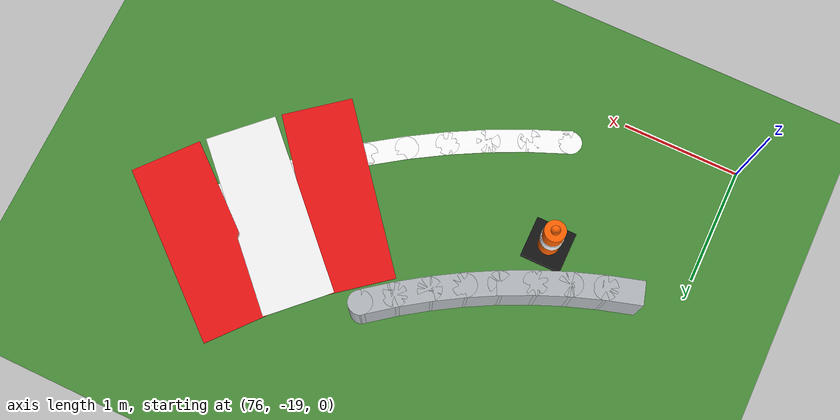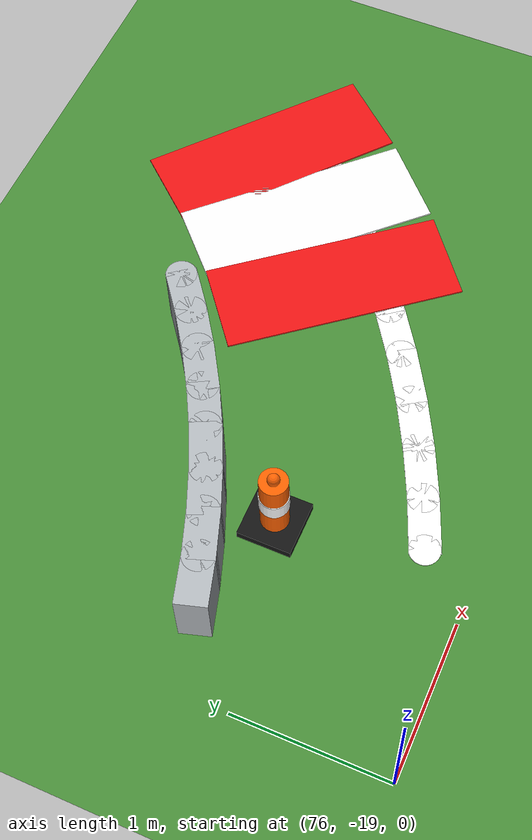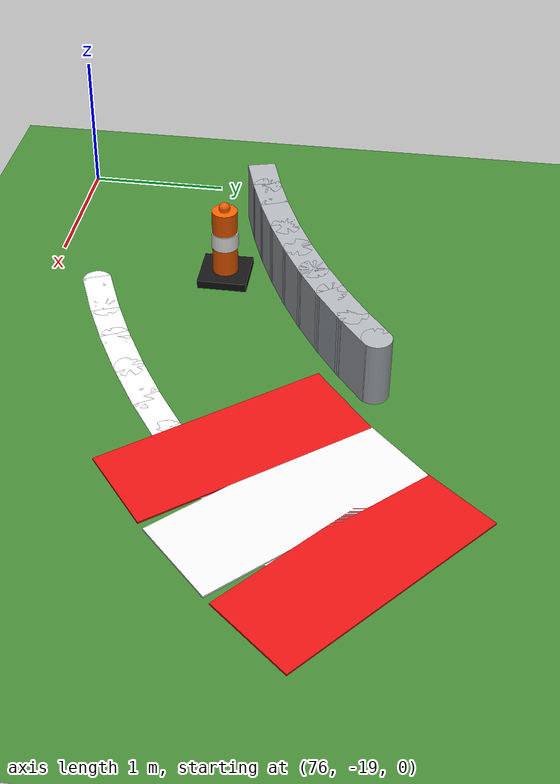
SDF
<sdf version="1.6">
 <world name="sem_silesia_ring_2026">
  <model name="ground_plane">
   <static>true</static>
   <link name="link">
    <collision name="collision">
     <geometry><plane><normal>0 0 1</normal><size>600 600</size></plane></geometry>
     <surface><friction><ode><mu>0.6</mu><mu2>0.6</mu2></ode></friction></surface>
    </collision>
    <visual name="visual">
     <geometry><plane><normal>0 0 1</normal><size>600 600</size></plane></geometry>
     <material><ambient>0.28 0.55 0.22 1</ambient><diffuse>0.28 0.55 0.22 1</diffuse></material>
    </visual>
   </link>
  </model>
  <model name="wl_Ri_jnt7">
   <static>true</static>
   <pose>77.3652 -18.6616 0.0050 0 0 0</pose>
   <link name="link">
    <visual name="v">
     <geometry><cylinder><radius>0.1000</radius><length>0.0040</length></cylinder></geometry>
     <material><ambient>1 1 1 1</ambient><diffuse>1 1 1 1</diffuse></material>
    </visual>
    <collision name="c">
     <geometry><cylinder><radius>0.1000</radius><length>0.0040</length></cylinder></geometry>
     <surface><friction><ode><mu>0.9</mu><mu2>0.9</mu2></ode></friction></surface>
    </collision>
   </link>
  </model>
  <model name="wl_Ri_s7">
   <static>true</static>
   <pose>77.5257 -18.5976 0.0050 0 0 0.3927</pose>
   <link name="link">
    <visual name="v">
     <geometry><box><size>0.4008 0.2000 0.0040</size></box></geometry>
     <material><ambient>1 1 1 1</ambient><diffuse>1 1 1 1</diffuse></material>
    </visual>
    <collision name="c">
     <geometry><box><size>0.4008 0.2000 0.0040</size></box></geometry>
     <surface><friction><ode><mu>0.9</mu><mu2>0.9</mu2></ode></friction></surface>
    </collision>
   </link>
  </model>
  <model name="wl_Ri_jnt8">
   <static>true</static>
   <pose>77.6845 -18.5294 0.0050 0 0 0</pose>
   <link name="link">
    <visual name="v">
     <geometry><cylinder><radius>0.1000</radius><length>0.0040</length></cylinder></geometry>
     <material><ambient>1 1 1 1</ambient><diffuse>1 1 1 1</diffuse></material>
    </visual>
    <collision name="c">
     <geometry><cylinder><radius>0.1000</radius><length>0.0040</length></cylinder></geometry>
     <surface><friction><ode><mu>0.9</mu><mu2>0.9</mu2></ode></friction></surface>
    </collision>
   </link>
  </model>
  <model name="wl_Ri_s8">
   <static>true</static>
   <pose>77.8414 -18.4571 0.0050 0 0 0.4451</pose>
   <link name="link">
    <visual name="v">
     <geometry><box><size>0.4008 0.2000 0.0040</size></box></geometry>
     <material><ambient>1 1 1 1</ambient><diffuse>1 1 1 1</diffuse></material>
    </visual>
    <collision name="c">
     <geometry><box><size>0.4008 0.2000 0.0040</size></box></geometry>
     <surface><friction><ode><mu>0.9</mu><mu2>0.9</mu2></ode></friction></surface>
    </collision>
   </link>
  </model>
  <model name="wl_Ri_jnt9">
   <static>true</static>
   <pose>77.9963 -18.3806 0.0050 0 0 0</pose>
   <link name="link">
    <visual name="v">
     <geometry><cylinder><radius>0.1000</radius><length>0.0040</length></cylinder></geometry>
     <material><ambient>1 1 1 1</ambient><diffuse>1 1 1 1</diffuse></material>
    </visual>
    <collision name="c">
     <geometry><cylinder><radius>0.1000</radius><length>0.0040</length></cylinder></geometry>
     <surface><friction><ode><mu>0.9</mu><mu2>0.9</mu2></ode></friction></surface>
    </collision>
   </link>
  </model>
  <model name="wl_Ri_s9">
   <static>true</static>
   <pose>78.1492 -18.3002 0.0050 0 0 0.4974</pose>
   <link name="link">
    <visual name="v">
     <geometry><box><size>0.4008 0.2000 0.0040</size></box></geometry>
     <material><ambient>1 1 1 1</ambient><diffuse>1 1 1 1</diffuse></material>
    </visual>
    <collision name="c">
     <geometry><box><size>0.4008 0.2000 0.0040</size></box></geometry>
     <surface><friction><ode><mu>0.9</mu><mu2>0.9</mu2></ode></friction></surface>
    </collision>
   </link>
  </model>
  <model name="wl_Ri_jnt10">
   <static>true</static>
   <pose>78.3000 -18.2158 0.0050 0 0 0</pose>
   <link name="link">
    <visual name="v">
     <geometry><cylinder><radius>0.1000</radius><length>0.0040</length></cylinder></geometry>
     <material><ambient>1 1 1 1</ambient><diffuse>1 1 1 1</diffuse></material>
    </visual>
    <collision name="c">
     <geometry><cylinder><radius>0.1000</radius><length>0.0040</length></cylinder></geometry>
     <surface><friction><ode><mu>0.9</mu><mu2>0.9</mu2></ode></friction></surface>
    </collision>
   </link>
  </model>
  <model name="wl_Ri_s10">
   <static>true</static>
   <pose>78.4485 -18.1274 0.0050 0 0 0.5498</pose>
   <link name="link">
    <visual name="v">
     <geometry><box><size>0.4008 0.2000 0.0040</size></box></geometry>
     <material><ambient>1 1 1 1</ambient><diffuse>1 1 1 1</diffuse></material>
    </visual>
    <collision name="c">
     <geometry><box><size>0.4008 0.2000 0.0040</size></box></geometry>
     <surface><friction><ode><mu>0.9</mu><mu2>0.9</mu2></ode></friction></surface>
    </collision>
   </link>
  </model>
  <model name="wl_Ri_jnt11">
   <static>true</static>
   <pose>78.5946 -18.0352 0.0050 0 0 0</pose>
   <link name="link">
    <visual name="v">
     <geometry><cylinder><radius>0.1000</radius><length>0.0040</length></cylinder></geometry>
     <material><ambient>1 1 1 1</ambient><diffuse>1 1 1 1</diffuse></material>
    </visual>
    <collision name="c">
     <geometry><cylinder><radius>0.1000</radius><length>0.0040</length></cylinder></geometry>
     <surface><friction><ode><mu>0.9</mu><mu2>0.9</mu2></ode></friction></surface>
    </collision>
   </link>
  </model>
  <model name="wl_Ri_s11">
   <static>true</static>
   <pose>78.7383 -17.9392 0.0050 0 0 0.6021</pose>
   <link name="link">
    <visual name="v">
     <geometry><box><size>0.4008 0.2000 0.0040</size></box></geometry>
     <material><ambient>1 1 1 1</ambient><diffuse>1 1 1 1</diffuse></material>
    </visual>
    <collision name="c">
     <geometry><box><size>0.4008 0.2000 0.0040</size></box></geometry>
     <surface><friction><ode><mu>0.9</mu><mu2>0.9</mu2></ode></friction></surface>
    </collision>
   </link>
  </model>
  <model name="wl_Ri_jnt12">
   <static>true</static>
   <pose>78.8794 -17.8395 0.0050 0 0 0</pose>
   <link name="link">
    <visual name="v">
     <geometry><cylinder><radius>0.1000</radius><length>0.0040</length></cylinder></geometry>
     <material><ambient>1 1 1 1</ambient><diffuse>1 1 1 1</diffuse></material>
    </visual>
    <collision name="c">
     <geometry><cylinder><radius>0.1000</radius><length>0.0040</length></cylinder></geometry>
     <surface><friction><ode><mu>0.9</mu><mu2>0.9</mu2></ode></friction></surface>
    </collision>
   </link>
  </model>
  <model name="wl_Ri_s12">
   <static>true</static>
   <pose>79.0178 -17.7361 0.0050 0 0 0.6545</pose>
   <link name="link">
    <visual name="v">
     <geometry><box><size>0.4008 0.2000 0.0040</size></box></geometry>
     <material><ambient>1 1 1 1</ambient><diffuse>1 1 1 1</diffuse></material>
    </visual>
    <collision name="c">
     <geometry><box><size>0.4008 0.2000 0.0040</size></box></geometry>
     <surface><friction><ode><mu>0.9</mu><mu2>0.9</mu2></ode></friction></surface>
    </collision>
   </link>
  </model>
  <model name="wl_Ri_jnt13">
   <static>true</static>
   <pose>79.1535 -17.6292 0.0050 0 0 0</pose>
   <link name="link">
    <visual name="v">
     <geometry><cylinder><radius>0.1000</radius><length>0.0040</length></cylinder></geometry>
     <material><ambient>1 1 1 1</ambient><diffuse>1 1 1 1</diffuse></material>
    </visual>
    <collision name="c">
     <geometry><cylinder><radius>0.1000</radius><length>0.0040</length></cylinder></geometry>
     <surface><friction><ode><mu>0.9</mu><mu2>0.9</mu2></ode></friction></surface>
    </collision>
   </link>
  </model>
  <model name="wl_Ri_s13">
   <static>true</static>
   <pose>79.2864 -17.5187 0.0050 0 0 0.7069</pose>
   <link name="link">
    <visual name="v">
     <geometry><box><size>0.4008 0.2000 0.0040</size></box></geometry>
     <material><ambient>1 1 1 1</ambient><diffuse>1 1 1 1</diffuse></material>
    </visual>
    <collision name="c">
     <geometry><box><size>0.4008 0.2000 0.0040</size></box></geometry>
     <surface><friction><ode><mu>0.9</mu><mu2>0.9</mu2></ode></friction></surface>
    </collision>
   </link>
  </model>
  <model name="wl_Ri_jnt14">
   <static>true</static>
   <pose>79.4163 -17.4048 0.0050 0 0 0</pose>
   <link name="link">
    <visual name="v">
     <geometry><cylinder><radius>0.1000</radius><length>0.0040</length></cylinder></geometry>
     <material><ambient>1 1 1 1</ambient><diffuse>1 1 1 1</diffuse></material>
    </visual>
    <collision name="c">
     <geometry><cylinder><radius>0.1000</radius><length>0.0040</length></cylinder></geometry>
     <surface><friction><ode><mu>0.9</mu><mu2>0.9</mu2></ode></friction></surface>
    </collision>
   </link>
  </model>
  <model name="wl_Ri_s14">
   <static>true</static>
   <pose>79.5431 -17.2875 0.0050 0 0 0.7592</pose>
   <link name="link">
    <visual name="v">
     <geometry><box><size>0.4008 0.2000 0.0040</size></box></geometry>
     <material><ambient>1 1 1 1</ambient><diffuse>1 1 1 1</diffuse></material>
    </visual>
    <collision name="c">
     <geometry><box><size>0.4008 0.2000 0.0040</size></box></geometry>
     <surface><friction><ode><mu>0.9</mu><mu2>0.9</mu2></ode></friction></surface>
    </collision>
   </link>
  </model>
  <model name="wl_Ri_jnt15">
   <static>true</static>
   <pose>79.6669 -17.1669 0.0050 0 0 0</pose>
   <link name="link">
    <visual name="v">
     <geometry><cylinder><radius>0.1000</radius><length>0.0040</length></cylinder></geometry>
     <material><ambient>1 1 1 1</ambient><diffuse>1 1 1 1</diffuse></material>
    </visual>
    <collision name="c">
     <geometry><cylinder><radius>0.1000</radius><length>0.0040</length></cylinder></geometry>
     <surface><friction><ode><mu>0.9</mu><mu2>0.9</mu2></ode></friction></surface>
    </collision>
   </link>
  </model>
  <model name="wl_Ri_s15">
   <static>true</static>
   <pose>79.7875 -17.0431 0.0050 0 0 0.8116</pose>
   <link name="link">
    <visual name="v">
     <geometry><box><size>0.4008 0.2000 0.0040</size></box></geometry>
     <material><ambient>1 1 1 1</ambient><diffuse>1 1 1 1</diffuse></material>
    </visual>
    <collision name="c">
     <geometry><box><size>0.4008 0.2000 0.0040</size></box></geometry>
     <surface><friction><ode><mu>0.9</mu><mu2>0.9</mu2></ode></friction></surface>
    </collision>
   </link>
  </model>
  <model name="wl_Ri_jnt16">
   <static>true</static>
   <pose>79.9048 -16.9163 0.0050 0 0 0</pose>
   <link name="link">
    <visual name="v">
     <geometry><cylinder><radius>0.1000</radius><length>0.0040</length></cylinder></geometry>
     <material><ambient>1 1 1 1</ambient><diffuse>1 1 1 1</diffuse></material>
    </visual>
    <collision name="c">
     <geometry><cylinder><radius>0.1000</radius><length>0.0040</length></cylinder></geometry>
     <surface><friction><ode><mu>0.9</mu><mu2>0.9</mu2></ode></friction></surface>
    </collision>
   </link>
  </model>
  <model name="wl_Ri_s16">
   <static>true</static>
   <pose>80.0187 -16.7864 0.0050 0 0 0.8639</pose>
   <link name="link">
    <visual name="v">
     <geometry><box><size>0.4008 0.2000 0.0040</size></box></geometry>
     <material><ambient>1 1 1 1</ambient><diffuse>1 1 1 1</diffuse></material>
    </visual>
    <collision name="c">
     <geometry><box><size>0.4008 0.2000 0.0040</size></box></geometry>
     <surface><friction><ode><mu>0.9</mu><mu2>0.9</mu2></ode></friction></surface>
    </collision>
   </link>
  </model>
  <model name="wl_Ri_jnt17">
   <static>true</static>
   <pose>80.1292 -16.6535 0.0050 0 0 0</pose>
   <link name="link">
    <visual name="v">
     <geometry><cylinder><radius>0.1000</radius><length>0.0040</length></cylinder></geometry>
     <material><ambient>1 1 1 1</ambient><diffuse>1 1 1 1</diffuse></material>
    </visual>
    <collision name="c">
     <geometry><cylinder><radius>0.1000</radius><length>0.0040</length></cylinder></geometry>
     <surface><friction><ode><mu>0.9</mu><mu2>0.9</mu2></ode></friction></surface>
    </collision>
   </link>
  </model>
  <model name="kR_in_k0">
   <static>true</static>
   <pose>78.9390 -17.4167 0.0120 0 0 0.6754</pose>
   <link name="link">
    <visual name="v">
     <geometry><box><size>0.6135 1.6000 0.0120</size></box></geometry>
     <material><ambient>0.92 0.08 0.08 1</ambient><diffuse>0.92 0.08 0.08 1</diffuse></material>
    </visual>
    <collision name="c">
     <geometry><box><size>0.6135 1.6000 0.0120</size></box></geometry>
     <surface><friction><ode><mu>0.9</mu><mu2>0.9</mu2></ode></friction></surface>
    </collision>
   </link>
  </model>
  <model name="kR_in_k1">
   <static>true</static>
   <pose>79.3843 -17.0242 0.0120 0 0 0.7697</pose>
   <link name="link">
    <visual name="v">
     <geometry><box><size>0.6135 1.6000 0.0120</size></box></geometry>
     <material><ambient>0.96 0.96 0.96 1</ambient><diffuse>0.96 0.96 0.96 1</diffuse></material>
    </visual>
    <collision name="c">
     <geometry><box><size>0.6135 1.6000 0.0120</size></box></geometry>
     <surface><friction><ode><mu>0.9</mu><mu2>0.9</mu2></ode></friction></surface>
    </collision>
   </link>
  </model>
  <model name="kR_in_k2">
   <static>true</static>
   <pose>79.7906 -16.5915 0.0120 0 0 0.8639</pose>
   <link name="link">
    <visual name="v">
     <geometry><box><size>0.6135 1.6000 0.0120</size></box></geometry>
     <material><ambient>0.92 0.08 0.08 1</ambient><diffuse>0.92 0.08 0.08 1</diffuse></material>
    </visual>
    <collision name="c">
     <geometry><box><size>0.6135 1.6000 0.0120</size></box></geometry>
     <surface><friction><ode><mu>0.9</mu><mu2>0.9</mu2></ode></friction></surface>
    </collision>
   </link>
  </model>
  <model name="arm_Ri_s5">
   <static>true</static>
   <pose>76.5053 -17.5817 0.2250 0 0 0.2880</pose>
   <link name="link">
    <visual name="v">
     <geometry><box><size>0.3327 0.2000 0.4500</size></box></geometry>
     <material><ambient>0.70 0.72 0.74 1</ambient><diffuse>0.70 0.72 0.74 1</diffuse></material>
    </visual>
    <collision name="c">
     <geometry><box><size>0.3327 0.2000 0.4500</size></box></geometry>
     <surface><friction><ode><mu>0.9</mu><mu2>0.9</mu2></ode></friction></surface>
    </collision>
   </link>
  </model>
  <model name="arm_Ri_jnt6">
   <static>true</static>
   <pose>76.6378 -17.5406 0.2250 0 0 0</pose>
   <link name="link">
    <visual name="v">
     <geometry><cylinder><radius>0.1000</radius><length>0.4500</length></cylinder></geometry>
     <material><ambient>0.70 0.72 0.74 1</ambient><diffuse>0.70 0.72 0.74 1</diffuse></material>
    </visual>
    <collision name="c">
     <geometry><cylinder><radius>0.1000</radius><length>0.4500</length></cylinder></geometry>
     <surface><friction><ode><mu>0.9</mu><mu2>0.9</mu2></ode></friction></surface>
    </collision>
   </link>
  </model>
  <model name="arm_Ri_s6">
   <static>true</static>
   <pose>76.7692 -17.4960 0.2250 0 0 0.3403</pose>
   <link name="link">
    <visual name="v">
     <geometry><box><size>0.3327 0.2000 0.4500</size></box></geometry>
     <material><ambient>0.70 0.72 0.74 1</ambient><diffuse>0.70 0.72 0.74 1</diffuse></material>
    </visual>
    <collision name="c">
     <geometry><box><size>0.3327 0.2000 0.4500</size></box></geometry>
     <surface><friction><ode><mu>0.9</mu><mu2>0.9</mu2></ode></friction></surface>
    </collision>
   </link>
  </model>
  <model name="arm_Ri_jnt7">
   <static>true</static>
   <pose>76.8994 -17.4480 0.2250 0 0 0</pose>
   <link name="link">
    <visual name="v">
     <geometry><cylinder><radius>0.1000</radius><length>0.4500</length></cylinder></geometry>
     <material><ambient>0.70 0.72 0.74 1</ambient><diffuse>0.70 0.72 0.74 1</diffuse></material>
    </visual>
    <collision name="c">
     <geometry><cylinder><radius>0.1000</radius><length>0.4500</length></cylinder></geometry>
     <surface><friction><ode><mu>0.9</mu><mu2>0.9</mu2></ode></friction></surface>
    </collision>
   </link>
  </model>
  <model name="arm_Ri_s7">
   <static>true</static>
   <pose>77.0282 -17.3966 0.2250 0 0 0.3927</pose>
   <link name="link">
    <visual name="v">
     <geometry><box><size>0.3327 0.2000 0.4500</size></box></geometry>
     <material><ambient>0.70 0.72 0.74 1</ambient><diffuse>0.70 0.72 0.74 1</diffuse></material>
    </visual>
    <collision name="c">
     <geometry><box><size>0.3327 0.2000 0.4500</size></box></geometry>
     <surface><friction><ode><mu>0.9</mu><mu2>0.9</mu2></ode></friction></surface>
    </collision>
   </link>
  </model>
  <model name="arm_Ri_jnt8">
   <static>true</static>
   <pose>77.1557 -17.3418 0.2250 0 0 0</pose>
   <link name="link">
    <visual name="v">
     <geometry><cylinder><radius>0.1000</radius><length>0.4500</length></cylinder></geometry>
     <material><ambient>0.70 0.72 0.74 1</ambient><diffuse>0.70 0.72 0.74 1</diffuse></material>
    </visual>
    <collision name="c">
     <geometry><cylinder><radius>0.1000</radius><length>0.4500</length></cylinder></geometry>
     <surface><friction><ode><mu>0.9</mu><mu2>0.9</mu2></ode></friction></surface>
    </collision>
   </link>
  </model>
  <model name="arm_Ri_s8">
   <static>true</static>
   <pose>77.2817 -17.2837 0.2250 0 0 0.4451</pose>
   <link name="link">
    <visual name="v">
     <geometry><box><size>0.3327 0.2000 0.4500</size></box></geometry>
     <material><ambient>0.70 0.72 0.74 1</ambient><diffuse>0.70 0.72 0.74 1</diffuse></material>
    </visual>
    <collision name="c">
     <geometry><box><size>0.3327 0.2000 0.4500</size></box></geometry>
     <surface><friction><ode><mu>0.9</mu><mu2>0.9</mu2></ode></friction></surface>
    </collision>
   </link>
  </model>
  <model name="arm_Ri_jnt9">
   <static>true</static>
   <pose>77.4061 -17.2223 0.2250 0 0 0</pose>
   <link name="link">
    <visual name="v">
     <geometry><cylinder><radius>0.1000</radius><length>0.4500</length></cylinder></geometry>
     <material><ambient>0.70 0.72 0.74 1</ambient><diffuse>0.70 0.72 0.74 1</diffuse></material>
    </visual>
    <collision name="c">
     <geometry><cylinder><radius>0.1000</radius><length>0.4500</length></cylinder></geometry>
     <surface><friction><ode><mu>0.9</mu><mu2>0.9</mu2></ode></friction></surface>
    </collision>
   </link>
  </model>
  <model name="arm_Ri_s9">
   <static>true</static>
   <pose>77.5289 -17.1577 0.2250 0 0 0.4974</pose>
   <link name="link">
    <visual name="v">
     <geometry><box><size>0.3327 0.2000 0.4500</size></box></geometry>
     <material><ambient>0.70 0.72 0.74 1</ambient><diffuse>0.70 0.72 0.74 1</diffuse></material>
    </visual>
    <collision name="c">
     <geometry><box><size>0.3327 0.2000 0.4500</size></box></geometry>
     <surface><friction><ode><mu>0.9</mu><mu2>0.9</mu2></ode></friction></surface>
    </collision>
   </link>
  </model>
  <model name="arm_Ri_jnt10">
   <static>true</static>
   <pose>77.6500 -17.0899 0.2250 0 0 0</pose>
   <link name="link">
    <visual name="v">
     <geometry><cylinder><radius>0.1000</radius><length>0.4500</length></cylinder></geometry>
     <material><ambient>0.70 0.72 0.74 1</ambient><diffuse>0.70 0.72 0.74 1</diffuse></material>
    </visual>
    <collision name="c">
     <geometry><cylinder><radius>0.1000</radius><length>0.4500</length></cylinder></geometry>
     <surface><friction><ode><mu>0.9</mu><mu2>0.9</mu2></ode></friction></surface>
    </collision>
   </link>
  </model>
  <model name="arm_Ri_s10">
   <static>true</static>
   <pose>77.7692 -17.0190 0.2250 0 0 0.5498</pose>
   <link name="link">
    <visual name="v">
     <geometry><box><size>0.3327 0.2000 0.4500</size></box></geometry>
     <material><ambient>0.70 0.72 0.74 1</ambient><diffuse>0.70 0.72 0.74 1</diffuse></material>
    </visual>
    <collision name="c">
     <geometry><box><size>0.3327 0.2000 0.4500</size></box></geometry>
     <surface><friction><ode><mu>0.9</mu><mu2>0.9</mu2></ode></friction></surface>
    </collision>
   </link>
  </model>
  <model name="arm_Ri_jnt11">
   <static>true</static>
   <pose>77.8866 -16.9450 0.2250 0 0 0</pose>
   <link name="link">
    <visual name="v">
     <geometry><cylinder><radius>0.1000</radius><length>0.4500</length></cylinder></geometry>
     <material><ambient>0.70 0.72 0.74 1</ambient><diffuse>0.70 0.72 0.74 1</diffuse></material>
    </visual>
    <collision name="c">
     <geometry><cylinder><radius>0.1000</radius><length>0.4500</length></cylinder></geometry>
     <surface><friction><ode><mu>0.9</mu><mu2>0.9</mu2></ode></friction></surface>
    </collision>
   </link>
  </model>
  <model name="arm_Ri_s11">
   <static>true</static>
   <pose>78.0020 -16.8679 0.2250 0 0 0.6021</pose>
   <link name="link">
    <visual name="v">
     <geometry><box><size>0.3327 0.2000 0.4500</size></box></geometry>
     <material><ambient>0.70 0.72 0.74 1</ambient><diffuse>0.70 0.72 0.74 1</diffuse></material>
    </visual>
    <collision name="c">
     <geometry><box><size>0.3327 0.2000 0.4500</size></box></geometry>
     <surface><friction><ode><mu>0.9</mu><mu2>0.9</mu2></ode></friction></surface>
    </collision>
   </link>
  </model>
  <model name="arm_Ri_jnt12">
   <static>true</static>
   <pose>78.1153 -16.7878 0.2250 0 0 0</pose>
   <link name="link">
    <visual name="v">
     <geometry><cylinder><radius>0.1000</radius><length>0.4500</length></cylinder></geometry>
     <material><ambient>0.70 0.72 0.74 1</ambient><diffuse>0.70 0.72 0.74 1</diffuse></material>
    </visual>
    <collision name="c">
     <geometry><cylinder><radius>0.1000</radius><length>0.4500</length></cylinder></geometry>
     <surface><friction><ode><mu>0.9</mu><mu2>0.9</mu2></ode></friction></surface>
    </collision>
   </link>
  </model>
  <model name="arm_Ri_s12">
   <static>true</static>
   <pose>78.2264 -16.7048 0.2250 0 0 0.6545</pose>
   <link name="link">
    <visual name="v">
     <geometry><box><size>0.3327 0.2000 0.4500</size></box></geometry>
     <material><ambient>0.70 0.72 0.74 1</ambient><diffuse>0.70 0.72 0.74 1</diffuse></material>
    </visual>
    <collision name="c">
     <geometry><box><size>0.3327 0.2000 0.4500</size></box></geometry>
     <surface><friction><ode><mu>0.9</mu><mu2>0.9</mu2></ode></friction></surface>
    </collision>
   </link>
  </model>
  <model name="arm_Ri_jnt13">
   <static>true</static>
   <pose>78.3354 -16.6189 0.2250 0 0 0</pose>
   <link name="link">
    <visual name="v">
     <geometry><cylinder><radius>0.1000</radius><length>0.4500</length></cylinder></geometry>
     <material><ambient>0.70 0.72 0.74 1</ambient><diffuse>0.70 0.72 0.74 1</diffuse></material>
    </visual>
    <collision name="c">
     <geometry><cylinder><radius>0.1000</radius><length>0.4500</length></cylinder></geometry>
     <surface><friction><ode><mu>0.9</mu><mu2>0.9</mu2></ode></friction></surface>
    </collision>
   </link>
  </model>
  <model name="cn_Ri_1">
   <static>true</static>
   <pose>77.1813 -17.7661 0 0 0 0</pose>
   <link name="link">
    <visual name="base">
     <pose>0 0 0.03 0 0 0</pose>
     <geometry><box><size>0.35 0.35 0.06</size></box></geometry>
     <material><ambient>0.08 0.08 0.08 1</ambient><diffuse>0.08 0.08 0.08 1</diffuse></material>
    </visual>
    <visual name="body">
     <pose>0 0 0.30 0 0 0</pose>
     <geometry><cylinder><radius>0.09</radius><length>0.50</length></cylinder></geometry>
     <material><ambient>1.0 0.38 0.0 1</ambient><diffuse>1.0 0.38 0.0 1</diffuse></material>
    </visual>
    <visual name="stripe">
     <pose>0 0 0.32 0 0 0</pose>
     <geometry><cylinder><radius>0.095</radius><length>0.12</length></cylinder></geometry>
     <material><ambient>1 1 1 1</ambient><diffuse>1 1 1 1</diffuse></material>
    </visual>
    <visual name="tip">
     <pose>0 0 0.57 0 0 0</pose>
     <geometry><sphere><radius>0.04</radius></sphere></geometry>
     <material><ambient>1.0 0.38 0.0 1</ambient><diffuse>1.0 0.38 0.0 1</diffuse></material>
    </visual>
    <collision name="c">
     <pose>0 0 0.28 0 0 0</pose>
     <geometry><cylinder><radius>0.09</radius><length>0.56</length></cylinder></geometry>
    </collision>
   </link>
  </model>
 </world>
</sdf>
